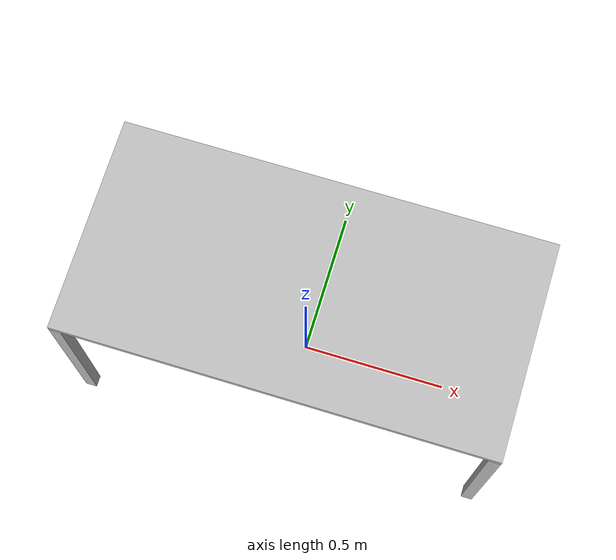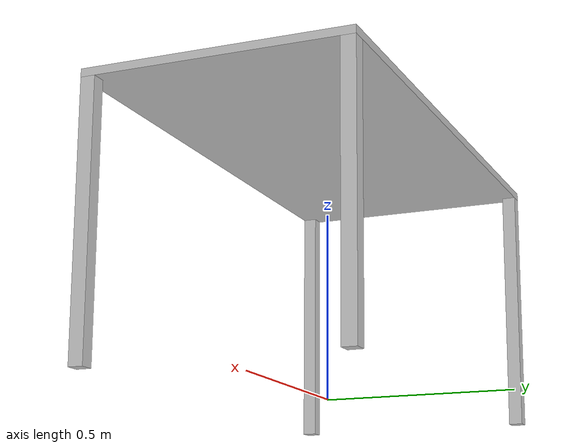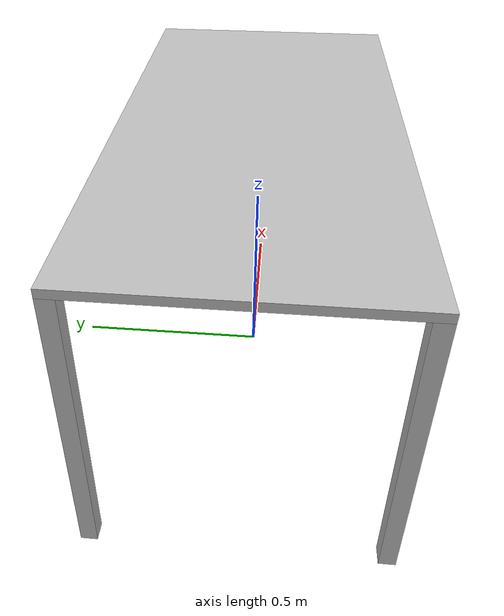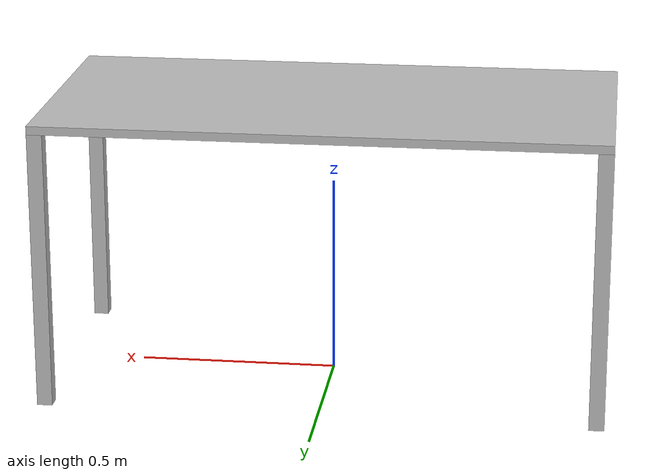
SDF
<?xml version="1.0"?>
<sdf version="1.6">
  <model name="rwc2016/table_black">
    <link name="1_link">
      <collision name="1_col">
        <geometry>
          <box>
            <size>1.4 0.7 0.021</size>
          </box>
        </geometry>
      </collision>
      <visual name="1_vis">
        <geometry>
          <box>
            <size>1.4 0.7 0.021</size>
          </box>
        </geometry>
        <material>
          <ambient>0.75 0.75 0.75 1</ambient>
        </material>
      </visual>
      <pose>0 0 0.7065 0 0 0</pose>
    </link>
    <link name="2_link">
      <collision name="2_col">
        <geometry>
          <box>
            <size>0.038 0.038 0.696</size>
          </box>
        </geometry>
      </collision>
      <visual name="2_vis">
        <geometry>
          <box>
            <size>0.038 0.038 0.696</size>
          </box>
        </geometry>
        <material>
          <ambient>0.75 0.75 0.75 1</ambient>
        </material>
      </visual>
      <pose>-0.681 -0.331 0.348 0 0 0</pose>
    </link>
    <link name="3_link">
      <collision name="3_col">
        <geometry>
          <box>
            <size>0.038 0.038 0.696</size>
          </box>
        </geometry>
      </collision>
      <visual name="3_vis">
        <geometry>
          <box>
            <size>0.038 0.038 0.696</size>
          </box>
        </geometry>
        <material>
          <ambient>0.75 0.75 0.75 1</ambient>
        </material>
      </visual>
      <pose>0.681 -0.331 0.348 0 0 0</pose>
    </link>
    <link name="4_link">
      <collision name="4_col">
        <geometry>
          <box>
            <size>0.038 0.038 0.696</size>
          </box>
        </geometry>
      </collision>
      <visual name="4_vis">
        <geometry>
          <box>
            <size>0.038 0.038 0.696</size>
          </box>
        </geometry>
        <material>
          <ambient>0.75 0.75 0.75 1</ambient>
        </material>
      </visual>
      <pose>-0.681 0.331 0.348 0 0 0</pose>
    </link>
    <link name="5_link">
      <collision name="5_col">
        <geometry>
          <box>
            <size>0.038 0.038 0.696</size>
          </box>
        </geometry>
      </collision>
      <visual name="5_vis">
        <geometry>
          <box>
            <size>0.038 0.038 0.696</size>
          </box>
        </geometry>
        <material>
          <ambient>0.75 0.75 0.75 1</ambient>
        </material>
      </visual>
      <pose>0.681 0.331 0.348 0 0 0</pose>
    </link>
    <link name="on_top_of">
      <virtual_volume name="on_top_of_vv">
        <geometry>
          <box>
            <size>1.34 0.64 0.25</size>
          </box>
        </geometry>
        <pose>0.0 0.0 0.862 0 0 0</pose>
      </virtual_volume>
    </link>
    <link name="in_front_of">
      <virtual_volume name="in_front_of_vv">
        <geometry>
          <box>
            <size>0.2 0.5 0.01</size>
          </box>
        </geometry>
        <pose>1.2 0.0 0.005 0 0 0</pose>
      </virtual_volume>
    </link>
    <static>true</static>
  </model>
</sdf>
